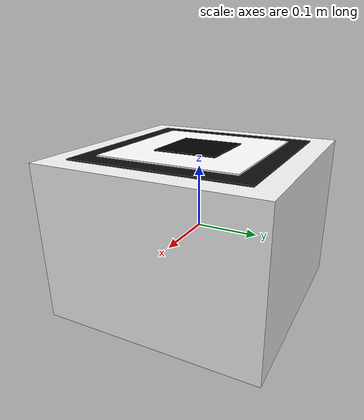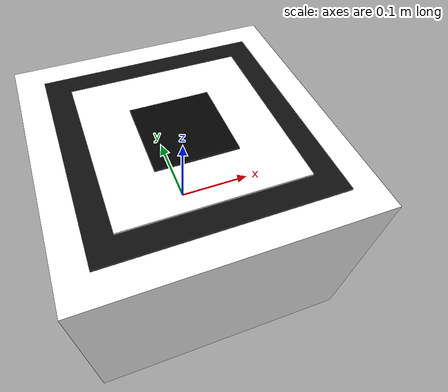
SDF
<?xml version="1.0"?>
<sdf version="1.6">
  <model name="intelligence_cache">
    <static>true</static>
    <link name="cache_link">
      <collision name="collision">
        <geometry>
          <box>
            <size>0.35 0.35 0.25</size>
          </box>
        </geometry>
      </collision>
      <visual name="visual_box">
        <geometry>
          <box>
            <size>0.35 0.35 0.25</size>
          </box>
        </geometry>
        <material>
          <ambient>0.9 0.9 0.9 1.0</ambient>
          <diffuse>0.95 0.95 0.95 1.0</diffuse>
        </material>
      </visual>
      <visual name="visual_qr_surface">
        <pose>0 0 0.126 0 0 0</pose>
        <geometry>
          <box>
            <size>0.28 0.28 0.002</size>
          </box>
        </geometry>
        <material>
          <ambient>0.0 0.0 0.0 1.0</ambient>
          <diffuse>0.05 0.05 0.05 1.0</diffuse>
        </material>
      </visual>
      <visual name="visual_qr_inner_square">
        <pose>0 0 0.128 0 0 0</pose>
        <geometry>
          <box>
            <size>0.22 0.22 0.002</size>
          </box>
        </geometry>
        <material>
          <ambient>1.0 1.0 1.0 1.0</ambient>
          <diffuse>1.0 1.0 1.0 1.0</diffuse>
        </material>
      </visual>
      <visual name="visual_qr_center_dot">
        <pose>0 0 0.130 0 0 0</pose>
        <geometry>
          <box>
            <size>0.10 0.10 0.002</size>
          </box>
        </geometry>
        <material>
          <ambient>0.0 0.0 0.0 1.0</ambient>
          <diffuse>0.0 0.0 0.0 1.0</diffuse>
        </material>
      </visual>
    </link>
  </model>
</sdf>
